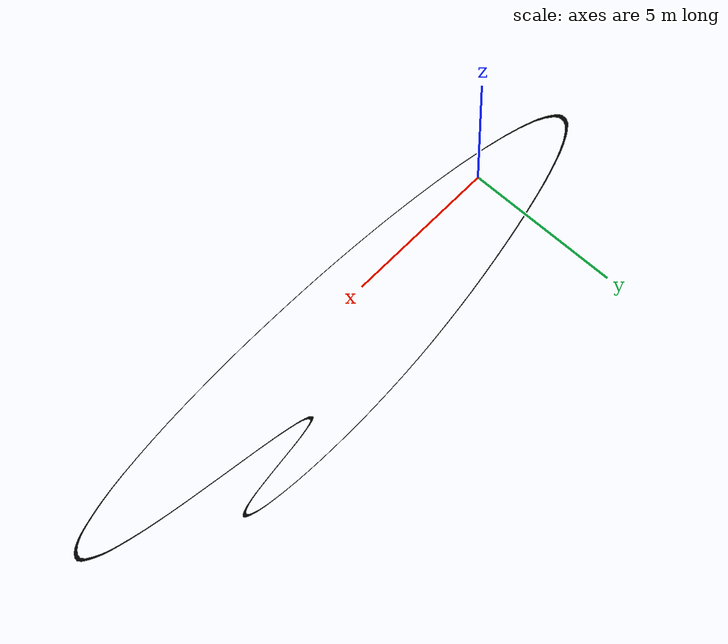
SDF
<?xml version="1.0" ?>
<sdf version="1.6">
  <model name="road">
    <!-- Modelin tümüne uygulanacak pose: x y z roll pitch yaw -->
    <pose>6.7 0.5 0 0 0 1.57</pose>

    <!-- Model statik olsun, böylece fizik etkileşimine girmesin -->
    <static>true</static>
    <link name="link">

      <!-- Collision bilgisi mevcut, ancak çarpışmalar devre dışı bırakılıyor -->
      <collision name="collision">
      </collision>

      <!-- Görsel Tanımlama -->
      <visual name="visual">
        <geometry>
          <mesh>
            <uri>meshes/road.STL</uri>
            <scale>0.1 0.7 0.1</scale>
          </mesh>
        </geometry>
        <material>
          <ambient>0 0 0 1</ambient>
          <diffuse>0 0 0 1</diffuse>
          <specular>0.1 0.1 0.1 1</specular>
          <emissive>0 0 0 1</emissive>
        </material>
      </visual>

      <!-- Damping değerleri -->
      <velocity_decay>
        <linear>0.2</linear>
        <angular>0.2</angular>
      </velocity_decay>

      <!-- İnertial bilgileri -->
      <inertial>
        <mass>0.5</mass>
        <inertia>
          <ixx>0.005</ixx>
          <ixy>0</ixy>
          <ixz>0</ixz>
          <iyy>0.005</iyy>
          <iyz>0</iyz>
          <izz>0.005</izz>
        </inertia>
        <pose>0 0 0 0 0 0</pose>
      </inertial>

    </link>
  </model>
</sdf>
